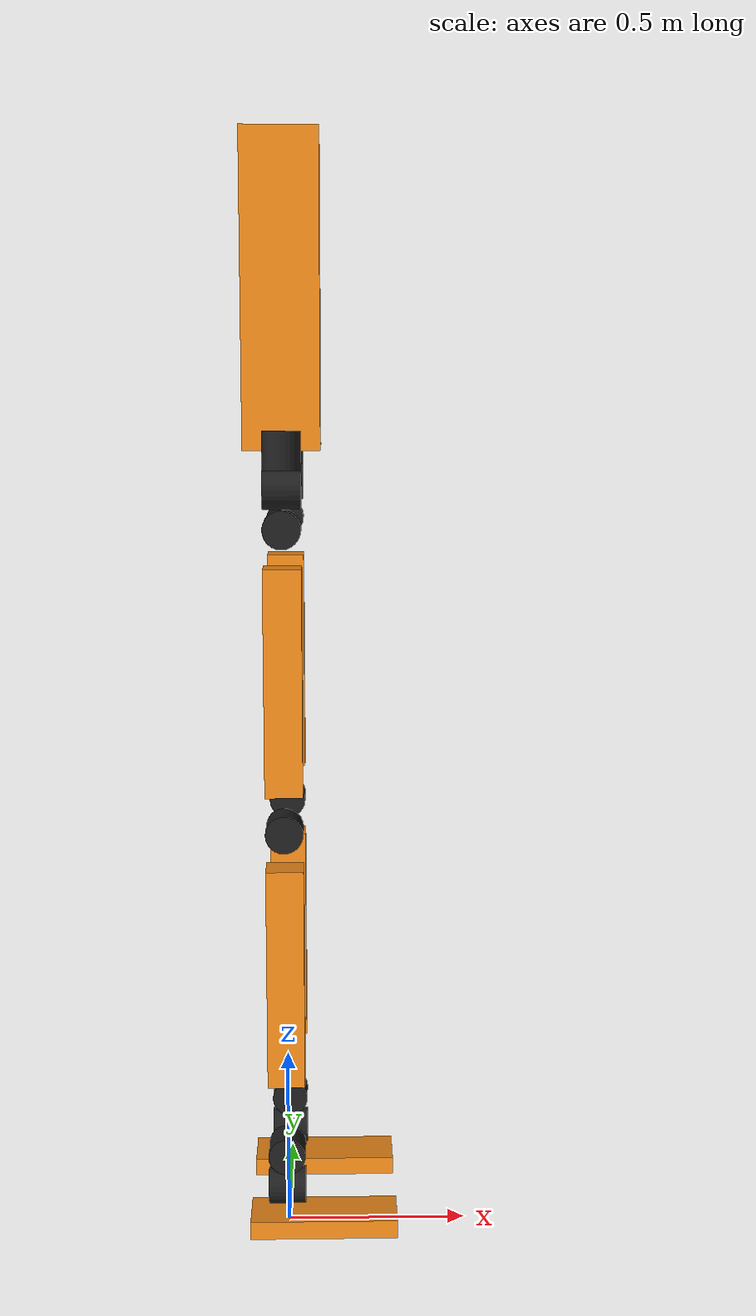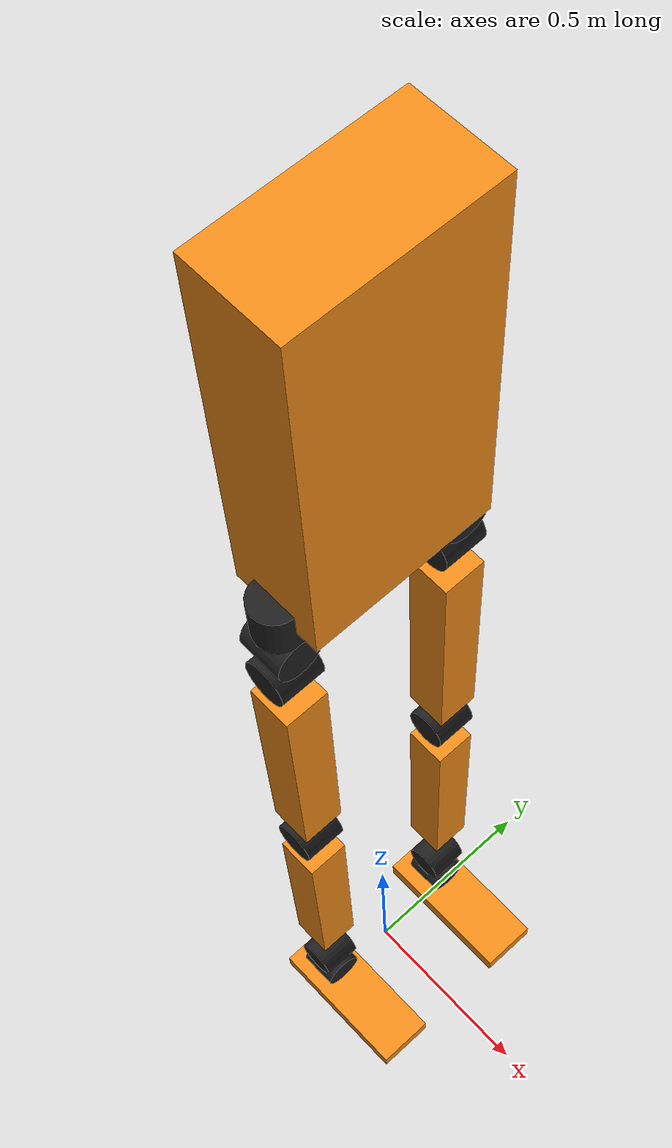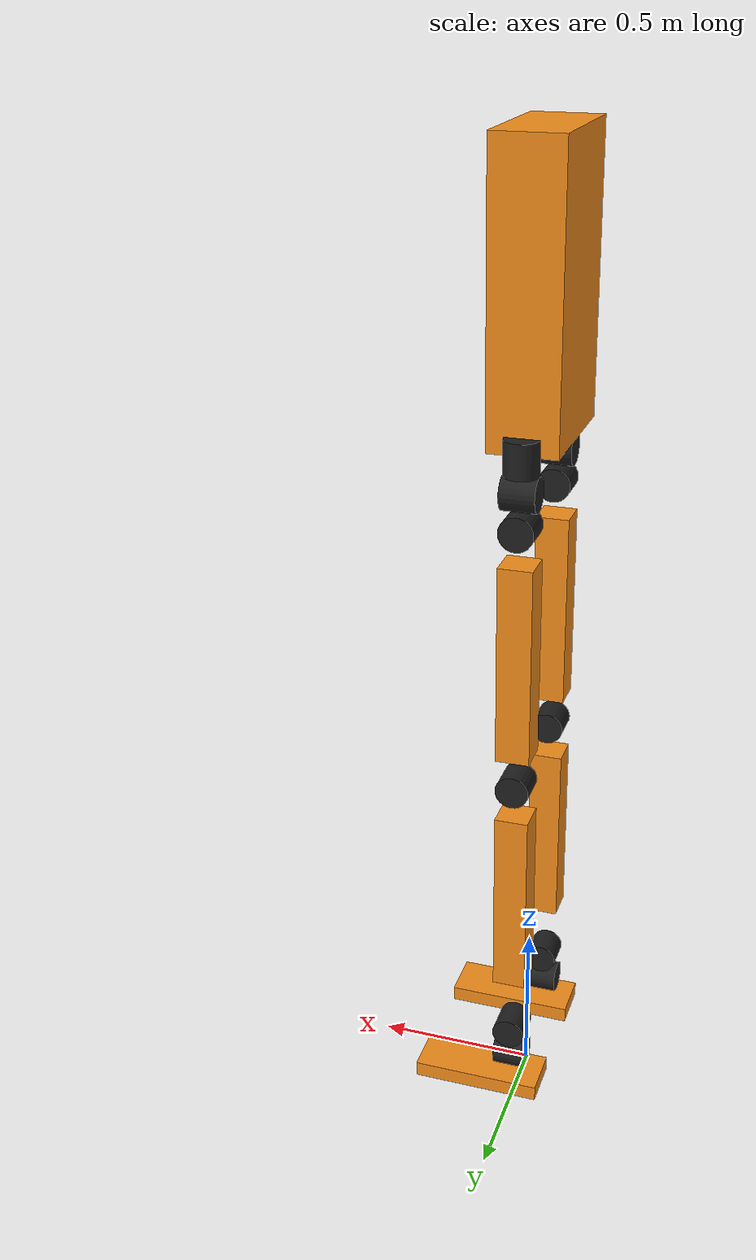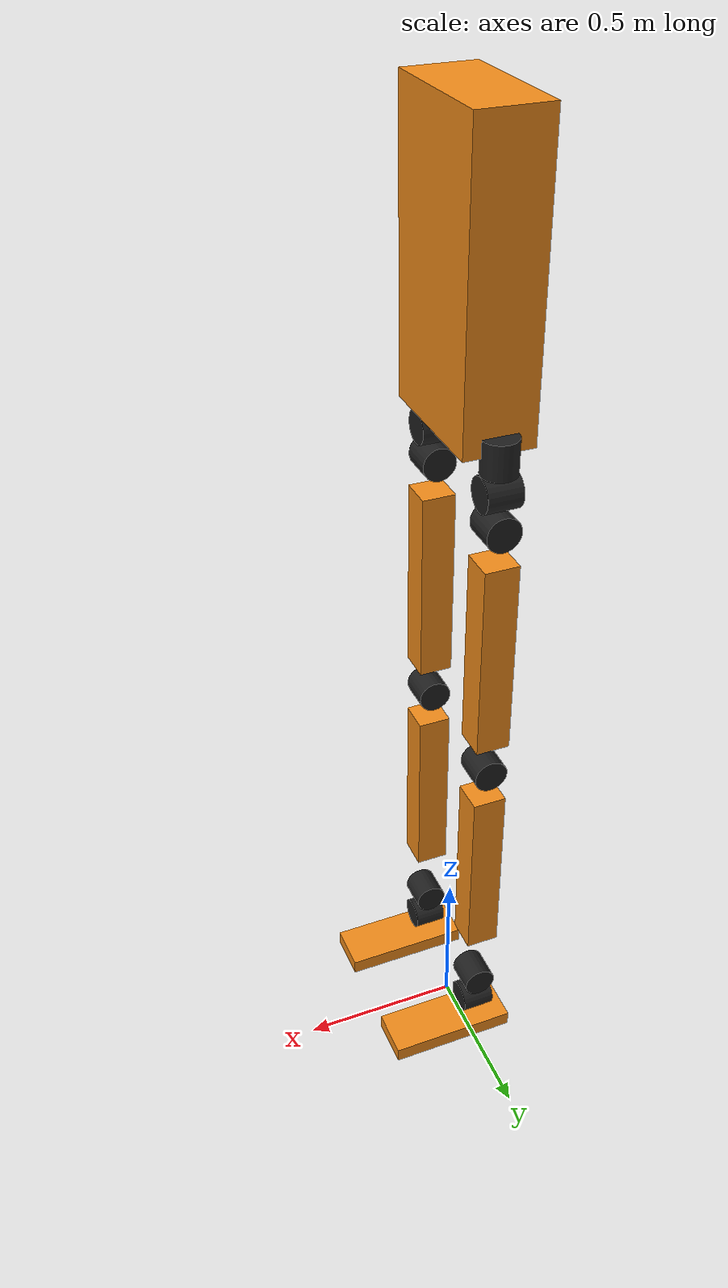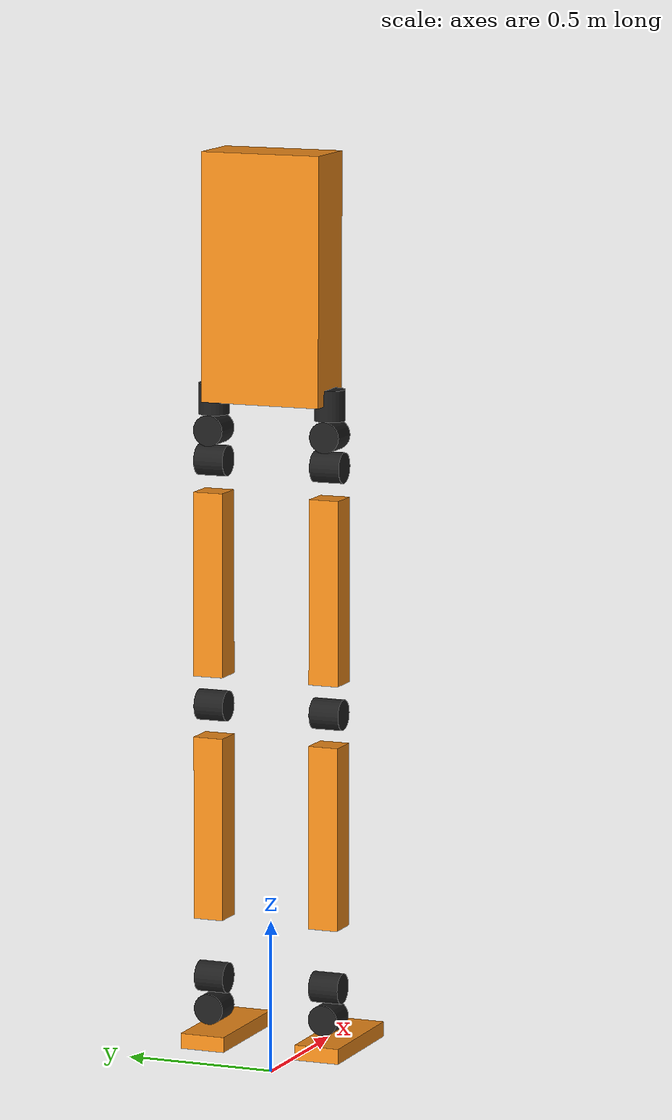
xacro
<?xml version='1.0'?>

<robot name="humanoid" xmlns:xacro="http://www.ros.org/wiki/xacro">

  <xacro:include filename="$(find humanoid_description)/urdf/humanoid.gazebo" />
  <xacro:include filename="$(find humanoid_description)/urdf/materials.xacro" />
  <xacro:include filename="$(find humanoid_description)/urdf/macros.xacro"    />
<!--lllllllllllllllllllllllllllllllllllllllllllllllllllllllllllll           sensors         lllllllllllllllllllllllllllllllllllllllll/-->

  <!--lllllllllllllllllllllllllllllllllllllllllllllllllllllllllllll     sensors fixed joints    lllllllllllllllllllllllllllllllllllllllll/-->

<!--lllllllllllllllllllllllllllllllllllllllllllllllllllllllllllll     waist_world fixed joint     lllllllllllllllllllllllllllllllllllllllll/-->

<!--lllllllllllllllllllllllllllllllllllllllllllllllllllllllllllll           waist         lllllllllllllllllllllllllllllllllllllllll/-->

 <link name='waist'>
    <inertial>
      <mass value="10.0"/>
      <origin xyz="0.0 0.0 2.6" rpy=" 0 0 0"/>
      <inertia
          ixx="0.5" ixy="0" ixz="0"
          iyy="1.0" iyz="0"
          izz="0.1"
      />
    </inertial>
    <collision name='collision'>
      <origin xyz="0.0 0.0 2.6" rpy=" 0 0 0"/>
      <geometry>
        <box size=".2 .5 .8"/>
      </geometry>
    </collision>
    <visual name='waist_visual'>
      <origin xyz="0.0 0.0 2.6" rpy=" 0 0 0"/>
      <geometry>
        <box size=".2 .4 .8"/>
      </geometry>
    </visual>
  </link>

  <!--lllllllllllllllllllllllllllllllllllllllllllllllllllllllllllll   hip yaw joints       lllllllllllllllllllllllllllllllllllllllll/-->

  <joint name="hiplyaw_joint" type="revolute">
    <axis xyz="0 0 1"/>
    <limit effort="1000.0" lower="-1.5707" upper="1.5707" velocity="0.0"/>
    <origin rpy="0 0 0" xyz="0 -0.2 2.2"/>
    <parent link="waist"/>
    <child link="hipl1"/>
  </joint>

  <joint name="hipryaw_joint" type="revolute">
    <axis xyz="0 0 1"/>
    <limit effort="1000.0" lower="-1.5707" upper="1.5707" velocity="0.0"/>
    <origin rpy="0 0 0" xyz="0 0.2 2.2"/>
    <parent link="waist"/>
    <child link="hipr1"/>
  </joint>

<!--lllllllllllllllllllllllllllllllllllllllllllllllllllllllllllll           hip  1         lllllllllllllllllllllllllllllllllllllllll/-->

  <link name="hipl1">
    <!--origin xyz="0.1 -0.13 0.1" rpy="0 1.5707 1.5707"/-->
    <collision name="collision">
      <origin xyz="0 -0.0 0" rpy="0 0 0"/>
      <geometry>
        <cylinder radius="0.05" length="0.1"/>
      </geometry>
    </collision>
    <visual name="hipl1_visual">
      <origin xyz="0 -0.0 0" rpy="0 0 0"/>
      <geometry>
        <cylinder radius="0.05" length="0.1"/>
      </geometry>
    </visual>
    <inertial>
      <origin xyz="0 -0.0 0" rpy="0 0 0"/>
      <mass value="1"/>
      <cylinder_inertia m="1" r="0.05" h="0.1"/>
      <inertia
        ixx="1.0" ixy="0.0" ixz="0.0"
        iyy="1.0" iyz="0.0"
        izz="1.0"/>
    </inertial>
  </link>

  <link name="hipr1">
    <!--origin xyz="0.1 -0.13 0.1" rpy="0 1.5707 1.5707"/-->
    <collision name="collision">
      <origin xyz="0 0.0 0" rpy="0 0 0"/>
      <geometry>
        <cylinder radius="0.05" length="0.1"/>
      </geometry>
    </collision>
    <visual name="hipr1_visual">
      <origin xyz="0 0.0 0" rpy="0 0 0"/>
      <geometry>
        <cylinder radius="0.05" length="0.1"/>
      </geometry>
    </visual>
    <inertial>
      <origin xyz="0 0.0 0" rpy="0 0 0"/>
      <mass value="1"/>
      <cylinder_inertia m="1" r="0.05" h="0.1"/>
      <inertia
        ixx="1.0" ixy="0.0" ixz="0.0"
        iyy="1.0" iyz="0.0"
        izz="1.0"/>
    </inertial>
  </link>

  <!--lllllllllllllllllllllllllllllllllllllllllllllllllllllllllllll     hip roll joints          lllllllllllllllllllllllllllllllllllllllll/-->

  <joint name="hiplroll_joint" type="revolute">
    <axis xyz="1 0 0"/>
    <limit effort="1000.0" lower="-1.5707" upper="1.5707" velocity="0.0"/>
    <origin rpy="0 0 0" xyz="0 0.0 -0.1"/>
    <parent link="hipl1"/>
    <child link="hipl2"/>
  </joint>

  <transmission name="tran_hipl_roll">
    <type>transmission_interface/SimpleTransmission</type>
    <joint name="hiplroll_joint">
      <hardwareInterface>EffortJointInterface</hardwareInterface>
    </joint>
    <actuator name="motor_hipl_roll">
      <hardwareInterface>EffortJointInterface</hardwareInterface>
      <mechanicalReduction>1</mechanicalReduction>
    </actuator>
  </transmission>

  <joint name="hiprroll_joint" type="revolute">
    <axis xyz="1 0 0"/>
    <limit effort="1000.0" lower="-1.5707" upper="1.5707" velocity="0.0"/>
    <origin rpy="0 0 0" xyz="0 0.0 -0.1"/>
    <parent link="hipr1"/>
    <child link="hipr2"/>
  </joint>

  <transmission name="tran_hipr_roll">
    <type>transmission_interface/SimpleTransmission</type>
    <joint name="hiprroll_joint">
      <hardwareInterface>EffortJointInterface</hardwareInterface>
    </joint>
    <actuator name="motor_hipr_roll">
      <hardwareInterface>EffortJointInterface</hardwareInterface>
      <mechanicalReduction>1</mechanicalReduction>
    </actuator>
  </transmission>
<!--lllllllllllllllllllllllllllllllllllllllllllllllllllllllllllll        hip 2         lllllllllllllllllllllllllllllllllllllllll/-->

  <link name="hipl2">
    <!--origin xyz="0.1 -0.13 0.1" rpy="0 1.5707 1.5707"/-->
    <collision name="collision">
      <origin xyz="0 -0.0 0" rpy="0 1.5707 0"/>
      <geometry>
        <cylinder radius="0.05" length="0.1"/>
      </geometry>
    </collision>
    <visual name="hipl2_visual">
      <origin xyz="0 -0.0 0" rpy="0 1.5707 0"/>
      <geometry>
        <cylinder radius="0.05" length="0.1"/>
      </geometry>
    </visual>
    <inertial>
      <origin xyz="0 -0.0 0" rpy="0 1.5707 0"/>
      <mass value="1"/>
      <cylinder_inertia m="1" r="0.05" h="0.1"/>
      <inertia
        ixx="1.0" ixy="0.0" ixz="0.0"
        iyy="1.0" iyz="0.0"
        izz="1.0"/>
    </inertial>
  </link>

  <link name="hipr2">
    <!--origin xyz="0.1 -0.13 0.1" rpy="0 1.5707 1.5707"/-->
    <collision name="collision">
      <origin xyz="0 0.0 0" rpy="0 1.5707 0"/>
      <geometry>
        <cylinder radius="0.05" length="0.1"/>
      </geometry>
    </collision>
    <visual name="hipr2_visual">
      <origin xyz="0 0.0 0" rpy="0 1.5707 0"/>
      <geometry>
        <cylinder radius="0.05" length="0.1"/>
      </geometry>
    </visual>
    <inertial>
      <origin xyz="0 0.0 0" rpy="0 1.5707 0"/>
      <mass value="1"/>
      <cylinder_inertia m="1" r="0.05" h="0.1"/>
      <inertia
        ixx="1.0" ixy="0.0" ixz="0.0"
        iyy="1.0" iyz="0.0"
        izz="1.0"/>
    </inertial>
  </link>

  <!--lllllllllllllllllllllllllllllllllllllllllllllllllllllllllllll    hip pitch  joints          lllllllllllllllllllllllllllllllllllllllll/-->

  <joint name="hiplpitch_joint" type="revolute">
    <axis xyz="0 1 0"/>
    <limit effort="1000.0" lower="-1.5707" upper="1.5707" velocity="0.0"/>
    <origin rpy="0 0 0" xyz="0 0.0 -0.1"/>
    <parent link="hipl2"/>
    <child link="hipl3"/>
  </joint>

  <transmission name="tran_hipl_pitch">
    <type>transmission_interface/SimpleTransmission</type>
    <joint name="hiplpitch_joint">
      <hardwareInterface>EffortJointInterface</hardwareInterface>
    </joint>
    <actuator name="motor_hipl_pitch">
      <hardwareInterface>EffortJointInterface</hardwareInterface>
      <mechanicalReduction>1</mechanicalReduction>
    </actuator>
  </transmission>

  <joint name="hiprpitch_joint" type="revolute">
    <axis xyz="0 1 0"/>
    <limit effort="1000.0" lower="-1.5707" upper="1.5707" velocity="0.0"/>
    <origin rpy="0 0 0" xyz="0 0.0 -0.1"/>
    <parent link="hipr2"/>
    <child link="hipr3"/>
  </joint>

  <transmission name="tran_hirl_pitch">
    <type>transmission_interface/SimpleTransmission</type>
    <joint name="hiprpitch_joint">
      <hardwareInterface>EffortJointInterface</hardwareInterface>
    </joint>
    <actuator name="motor_hipr_pitch">
      <hardwareInterface>EffortJointInterface</hardwareInterface>
      <mechanicalReduction>1</mechanicalReduction>
    </actuator>
  </transmission>

<!--lllllllllllllllllllllllllllllllllllllllllllllllllllllllllllll           hip 3         lllllllllllllllllllllllllllllllllllllllll/-->

  <link name="hipl3">
    <!--origin xyz="0.1 -0.13 0.1" rpy="0 1.5707 1.5707"/-->
    <collision name="collision">
      <origin xyz="0 -0.0 0" rpy="1.5707 0 0"/>
      <geometry>
        <cylinder radius="0.05" length="0.1"/>
      </geometry>
    </collision>
    <visual name="hipl3_visual">
      <origin xyz="0 -0.0 0" rpy="1.5707 0 0"/>
      <geometry>
        <cylinder radius="0.05" length="0.1"/>
      </geometry>
    </visual>
    <inertial>
      <origin xyz="0 -0.0 0" rpy="1.5707 0 0"/>
      <mass value="1"/>
      <cylinder_inertia m="1" r="0.05" h="0.1"/>
      <inertia
        ixx="1.0" ixy="0.0" ixz="0.0"
        iyy="1.0" iyz="0.0"
        izz="1.0"/>
    </inertial>
  </link>

  <link name="hipr3">
    <!--origin xyz="0.1 -0.13 0.1" rpy="0 1.5707 1.5707"/-->
    <collision name="collision">
      <origin xyz="0 0.0 0" rpy="1.5707 0 0"/>
      <geometry>
        <cylinder radius="0.05" length="0.1"/>
      </geometry>
    </collision>
    <visual name="hipr3_visual">
      <origin xyz="0 0.0 0" rpy="1.5707 0 0"/>
      <geometry>
        <cylinder radius="0.05" length="0.1"/>
      </geometry>
    </visual>
    <inertial>
      <origin xyz="0 0.0 0" rpy="1.5707 0 0"/>
      <mass value="1"/>
      <cylinder_inertia m="1" r="0.05" h="0.1"/>
      <inertia
        ixx="1.0" ixy="0.0" ixz="0.0"
        iyy="1.0" iyz="0.0"
        izz="1.0"/>
    </inertial>
  </link>

  <!--lllllllllllllllllllllllllllllllllllllllllllllllllllllllllllll      thigh fixed  joints          lllllllllllllllllllllllllllllllllllllllll/-->

  <joint name="thighl_joint" type="fixed">
    <origin rpy="0 0 0" xyz="0 0.0 -0.1"/>
    <parent link="hipl3"/>
    <child link="thighl"/>
  </joint>

  <joint name="thighr_joint" type="fixed">
    <origin rpy="0 0 0" xyz="0 0.0 -0.1"/>
    <parent link="hipr3"/>
    <child link="thighr"/>
  </joint>

<!--lllllllllllllllllllllllllllllllllllllllllllllllllllllllllllll           thigh         lllllllllllllllllllllllllllllllllllllllll/-->

  <link name='thighl'>
    <inertial>
      <mass value="10.0"/>
      <origin xyz="0.0 0.0 -0.3" rpy=" 0 0 0"/>
      <inertia
          ixx="0.5" ixy="0" ixz="0"
          iyy="1.0" iyz="0"
          izz="0.1"
      />
    </inertial>
    <collision name='collision'>
      <origin xyz="0.0 0.0 -0.3" rpy=" 0 0 0"/>
      <geometry>
        <box size=".1 .1 0.6"/>
      </geometry>
    </collision>
    <visual name='thighl_visual'>
      <origin xyz="0.0 0.0 -0.3" rpy=" 0 0 0"/>
      <geometry>
        <box size=".1 .1 0.6"/>
      </geometry>
    </visual>
  </link>

  <link name='thighr'>
    <inertial>
      <mass value="10.0"/>
      <origin xyz="0.0 0.0 -0.3" rpy=" 0 0 0"/>
      <inertia
          ixx="0.5" ixy="0" ixz="0"
          iyy="1.0" iyz="0"
          izz="0.1"
      />
    </inertial>
    <collision name='collision'>
      <origin xyz="0.0 0.0 -0.3" rpy=" 0 0 0"/>
      <geometry>
        <box size=".1 .1 0.6"/>
      </geometry>
    </collision>
    <visual name='thighr_visual'>
      <origin xyz="0.0 0.0 -0.3" rpy=" 0 0 0"/>
      <geometry>
        <box size=".1 .1 0.6"/>
      </geometry>
    </visual>
  </link>

  <!--lllllllllllllllllllllllllllllllllllllllllllllllllllllllllllll      knee  joints          lllllllllllllllllllllllllllllllllllllllll/-->

  <joint name="kneelpitch_joint" type="revolute">
    <axis xyz="0 -1 0"/>
    <limit effort="1000.0" lower="-3" upper="0" velocity="0.0"/>
    <origin rpy="0 0 0" xyz="0 0.0 -0.7"/>
    <parent link="thighl"/>
    <child link="kneel"/>
  </joint>

  <transmission name="tran_kneel_pitch">
    <type>transmission_interface/SimpleTransmission</type>
    <joint name="kneelpitch_joint">
      <hardwareInterface>EffortJointInterface</hardwareInterface>
    </joint>
    <actuator name="motor_kneel_pitch">
      <hardwareInterface>EffortJointInterface</hardwareInterface>
      <mechanicalReduction>1</mechanicalReduction>
    </actuator>
  </transmission>

  <joint name="kneerpitch_joint" type="revolute">
    <axis xyz="0 -1 0"/>
    <limit effort="1000.0" lower="-3" upper="0" velocity="0.0"/>
    <origin rpy="0 0 0" xyz="0 0.0 -0.7"/>
    <parent link="thighr"/>
    <child link="kneer"/>
  </joint>

  <transmission name="tran_kneer_pitch">
    <type>transmission_interface/SimpleTransmission</type>
    <joint name="kneerpitch_joint">
      <hardwareInterface>EffortJointInterface</hardwareInterface>
    </joint>
    <actuator name="motor_kneer_pitch">
      <hardwareInterface>EffortJointInterface</hardwareInterface>
      <mechanicalReduction>1</mechanicalReduction>
    </actuator>
  </transmission>

<!--lllllllllllllllllllllllllllllllllllllllllllllllllllllllllllll           knee         lllllllllllllllllllllllllllllllllllllllll/-->

  <link name="kneel">
    <!--origin xyz="0.1 -0.13 0.1" rpy="0 1.5707 1.5707"/-->
    <collision name="collision">
      <origin xyz="0 -0.0 0" rpy="1.5707 0 0"/>
      <geometry>
        <cylinder radius="0.05" length="0.1"/>
      </geometry>
    </collision>
    <visual name="kneel_visual">
      <origin xyz="0 -0.0 0" rpy="1.5707 0 0"/>
      <geometry>
        <cylinder radius="0.05" length="0.1"/>
      </geometry>
    </visual>
    <inertial>
      <origin xyz="0 -0.0 0" rpy="1.5707 0 0"/>
      <mass value="1"/>
      <cylinder_inertia m="1" r="0.05" h="0.1"/>
      <inertia
        ixx="1.0" ixy="0.0" ixz="0.0"
        iyy="1.0" iyz="0.0"
        izz="1.0"/>
    </inertial>
  </link>

  <link name="kneer">
    <!--origin xyz="0.1 -0.13 0.1" rpy="0 1.5707 1.5707"/-->
    <collision name="collision">
      <origin xyz="0 0.0 0" rpy="1.5707 0 0"/>
      <geometry>
        <cylinder radius="0.05" length="0.1"/>
      </geometry>
    </collision>
    <visual name="kneer_visual">
      <origin xyz="0 0.0 0" rpy="1.5707 0 0"/>
      <geometry>
        <cylinder radius="0.05" length="0.1"/>
      </geometry>
    </visual>
    <inertial>
      <origin xyz="0 0.0 0" rpy="1.5707 0 0"/>
      <mass value="1"/>
      <cylinder_inertia m="1" r="0.05" h="0.1"/>
      <inertia
        ixx="1.0" ixy="0.0" ixz="0.0"
        iyy="1.0" iyz="0.0"
        izz="1.0"/>
    </inertial>
  </link>

  <!--lllllllllllllllllllllllllllllllllllllllllllllllllllllllllllll       shank fixed joints          lllllllllllllllllllllllllllllllllllllllll/-->

  <joint name="shankl_joint" type="fixed">
    <origin rpy="0 0 0" xyz="0 0.0 -0.1"/>
    <parent link="kneel"/>
    <child link="shankl"/>
  </joint>

  <joint name="shankr_joint" type="fixed">
    <origin rpy="0 0 0" xyz="0 0.0 -0.1"/>
    <parent link="kneer"/>
    <child link="shankr"/>
  </joint>

<!--lllllllllllllllllllllllllllllllllllllllllllllllllllllllllllll           shank        lllllllllllllllllllllllllllllllllllllllll/-->

  <link name='shankl'>
    <inertial>
      <mass value="10.0"/>
      <origin xyz="0.0 0.0 -0.3" rpy=" 0 0 0"/>
      <inertia
          ixx="0.5" ixy="0" ixz="0"
          iyy="1.0" iyz="0"
          izz="0.1"
      />
    </inertial>
    <collision name='collision'>
      <origin xyz="0.0 0.0 -0.3" rpy=" 0 0 0"/>
      <geometry>
        <box size=".1 .1 0.6"/>
      </geometry>
    </collision>
    <visual name='shankl_visual'>
      <origin xyz="0.0 0.0 -0.3" rpy=" 0 0 0"/>
      <geometry>
        <box size=".1 .1 0.6"/>
      </geometry>
    </visual>
  </link>

  <link name='shankr'>
    <inertial>
      <mass value="10.0"/>
      <origin xyz="0.0 0.0 -0.3" rpy=" 0 0 0"/>
      <inertia
          ixx="0.5" ixy="0" ixz="0"
          iyy="1.0" iyz="0"
          izz="0.1"
      />
    </inertial>
    <collision name='collision'>
      <origin xyz="0.0 0.0 -0.3" rpy=" 0 0 0"/>
      <geometry>
        <box size=".1 .1 0.6"/>
      </geometry>
    </collision>
    <visual name='shankr_visual'>
      <origin xyz="0.0 0.0 -0.3" rpy=" 0 0 0"/>
      <geometry>
        <box size=".1 .1 0.6"/>
      </geometry>
    </visual>
  </link>

  <!--lllllllllllllllllllllllllllllllllllllllllllllllllllllllllllll      ankle1  joints          lllllllllllllllllllllllllllllllllllllllll/-->

  <joint name="anklelpitch_joint" type="revolute">
    <axis xyz="0 1 0"/>
    <limit effort="1000.0" lower="-1.5707" upper="1.5707" velocity="0.0"/>
    <origin rpy="0 0 0" xyz="0 0.0 -0.8"/>
    <parent link="shankl"/>
    <child link="anklel1"/>
  </joint>

  <transmission name="tran_anklel_pitch">
    <type>transmission_interface/SimpleTransmission</type>
    <joint name="anklelpitch_joint">
      <hardwareInterface>EffortJointInterface</hardwareInterface>
    </joint>
    <actuator name="motor_anklel_pitch">
      <hardwareInterface>EffortJointInterface</hardwareInterface>
      <mechanicalReduction>1</mechanicalReduction>
    </actuator>
  </transmission>

  <joint name="anklerpitch_joint" type="revolute">
    <axis xyz="0 1 0"/>
    <limit effort="1000.0" lower="-1.5707" upper="1.5707" velocity="0.0"/>
    <origin rpy="0 0 0" xyz="0 0.0 -0.8"/>
    <parent link="shankr"/>
    <child link="ankler1"/>
  </joint>

  <transmission name="tran_ankler_pitch">
    <type>transmission_interface/SimpleTransmission</type>
    <joint name="anklerpitch_joint">
      <hardwareInterface>EffortJointInterface</hardwareInterface>
    </joint>
    <actuator name="motor_ankler_pitch">
      <hardwareInterface>EffortJointInterface</hardwareInterface>
      <mechanicalReduction>1</mechanicalReduction>
    </actuator>
  </transmission>

<!--lllllllllllllllllllllllllllllllllllllllllllllllllllllllllllll           ankle 1         lllllllllllllllllllllllllllllllllllllllll/-->

  <link name="anklel1">

    <collision name="collision">
      <origin xyz="0 -0.0 0" rpy="1.5707 0 0"/>
      <geometry>
        <cylinder radius="0.05" length="0.1"/>
      </geometry>
    </collision>
    <visual name="anklel1_visual">
      <origin xyz="0 -0.0 0" rpy="1.5707 0 0"/>
      <geometry>
        <cylinder radius="0.05" length="0.1"/>
      </geometry>
    </visual>
    <inertial>
      <origin xyz="0 -0.0 0" rpy="1.5707 0 0"/>
      <mass value="1"/>
      <cylinder_inertia m="1" r="0.05" h="0.1"/>
      <inertia
        ixx="1.0" ixy="0.0" ixz="0.0"
        iyy="1.0" iyz="0.0"
        izz="1.0"/>
    </inertial>
  </link>

  <link name="ankler1">

    <collision name="collision">
      <origin xyz="0 0.0 0" rpy="1.5707 0 0"/>
      <geometry>
        <cylinder radius="0.05" length="0.1"/>
      </geometry>
    </collision>
    <visual name="ankler1_visual">
      <origin xyz="0 0.0 0" rpy="1.5707 0 0"/>
      <geometry>
        <cylinder radius="0.05" length="0.1"/>
      </geometry>
    </visual>
    <inertial>
      <origin xyz="0 0.0 0" rpy="1.5707 0 0"/>
      <mass value="1"/>
      <cylinder_inertia m="1" r="0.05" h="0.1"/>
      <inertia
        ixx="1.0" ixy="0.0" ixz="0.0"
        iyy="1.0" iyz="0.0"
        izz="1.0"/>
    </inertial>
  </link>

  <!--lllllllllllllllllllllllllllllllllllllllllllllllllllllllllllll      ankle2  joints          lllllllllllllllllllllllllllllllllllllllll/-->

  <joint name="anklelroll_joint" type="revolute">
    <axis xyz="1 0 0"/>
    <limit effort="1000.0" lower="-1.5707" upper="1.5707" velocity="0.0"/>
    <origin rpy="0 0 0" xyz="0 0.0 -0.1"/>
    <parent link="anklel1"/>
    <child link="anklel2"/>
  </joint>

  <transmission name="tran_anklel_roll">
    <type>transmission_interface/SimpleTransmission</type>
    <joint name="anklelroll_joint">
      <hardwareInterface>EffortJointInterface</hardwareInterface>
    </joint>
    <actuator name="motor_anklel_roll">
      <hardwareInterface>EffortJointInterface</hardwareInterface>
      <mechanicalReduction>1</mechanicalReduction>
    </actuator>
  </transmission>

  <joint name="anklerroll_joint" type="revolute">
    <axis xyz="1 0 0"/>
    <limit effort="1000.0" lower="-1.5707" upper="1.5707" velocity="0.0"/>
    <origin rpy="0 0 0" xyz="0 0.0 -0.1"/>
    <parent link="ankler1"/>
    <child link="ankler2"/>
  </joint>

  <transmission name="tran_ankler_roll">
    <type>transmission_interface/SimpleTransmission</type>
    <joint name="anklerroll_joint">
      <hardwareInterface>EffortJointInterface</hardwareInterface>
    </joint>
    <actuator name="motor_ankler_roll">
      <hardwareInterface>EffortJointInterface</hardwareInterface>
      <mechanicalReduction>1</mechanicalReduction>
    </actuator>
  </transmission>

<!--lllllllllllllllllllllllllllllllllllllllllllllllllllllllllllll           ankle 2         lllllllllllllllllllllllllllllllllllllllll/-->

  <link name="anklel2">

    <collision name="collision">
      <origin xyz="0 -0.0 0" rpy="0 1.5707 0"/>
      <geometry>
        <cylinder radius="0.05" length="0.1"/>
      </geometry>
    </collision>
    <visual name="anklel2_visual">
      <origin xyz="0 -0.0 0" rpy="0 1.5707 0"/>
      <geometry>
        <cylinder radius="0.05" length="0.1"/>
      </geometry>
    </visual>
    <inertial>
      <origin xyz="0 -0.0 0" rpy="0 1.5707 0"/>
      <mass value="1"/>
      <cylinder_inertia m="1" r="0.05" h="0.1"/>
      <inertia
        ixx="1.0" ixy="0.0" ixz="0.0"
        iyy="1.0" iyz="0.0"
        izz="1.0"/>
    </inertial>
  </link>

  <link name="ankler2">

    <collision name="collision">
      <origin xyz="0 0.0 0" rpy="0 1.5707 0"/>
      <geometry>
        <cylinder radius="0.05" length="0.1"/>
      </geometry>
    </collision>
    <visual name="ankler2_visual">
      <origin xyz="0 0.0 0" rpy="0 1.5707 0"/>
      <geometry>
        <cylinder radius="0.05" length="0.1"/>
      </geometry>
    </visual>
    <inertial>
      <origin xyz="0 0.0 0" rpy="0 1.5707 0"/>
      <mass value="1"/>
      <cylinder_inertia m="1" r="0.05" h="0.1"/>
      <inertia
        ixx="1.0" ixy="0.0" ixz="0.0"
        iyy="1.0" iyz="0.0"
        izz="1.0"/>
    </inertial>
  </link>

  <!--lllllllllllllllllllllllllllllllllllllllllllllllllllllllllllll      feet  fixed joints          lllllllllllllllllllllllllllllllllllllllll/-->

  <joint name="footl_joint" type="fixed">
    <origin rpy="0 0 0" xyz="0 0.0 -0.1"/>
    <parent link="anklel2"/>
    <child link="footl"/>
  </joint>

  <joint name="footr_joint" type="fixed">
    <origin rpy="0 0 0" xyz="0 0.0 -0.1"/>
    <parent link="ankler2"/>
    <child link="footr"/>
  </joint>

<!--lllllllllllllllllllllllllllllllllllllllllllllllllllllllllllll           feet         lllllllllllllllllllllllllllllllllllllllll/-->

 <link name='footl'>
    <inertial>
      <mass value="10.0"/>
      <origin xyz="0.0 0.0 0.0" rpy=" 0 0 0"/>
      <inertia
          ixx="0.5" ixy="0" ixz="0"
          iyy="1.0" iyz="0"
          izz="0.1"
      />
    </inertial>
    <collision name='collision'>
      <origin xyz="0.1 0.0 0.0" rpy=" 0 0 0"/>
      <geometry>
        <box size=".4 .15 .05"/>
      </geometry>
    </collision>
    <visual name='footl_visual'>
      <origin xyz="0.1 0.0 0.0" rpy=" 0 0 0"/>
      <geometry>
        <box size=".4 .15 .05"/>
      </geometry>
    </visual>
  </link>

 <link name='footr'>
    <inertial>
      <mass value="10.0"/>
      <origin xyz="0.1 0.0 0.0" rpy=" 0 0 0"/>
      <inertia
          ixx="0.5" ixy="0" ixz="0"
          iyy="1.0" iyz="0"
          izz="0.1"
      />
    </inertial>
    <collision name='collision'>
      <origin xyz="0.1 0.0 0.0" rpy=" 0 0 0"/>
      <geometry>
        <box size=".4 .15 .05"/>
      </geometry>
    </collision>
    <visual name='footr_visual'>
      <origin xyz="0.1 0.0 0.0" rpy=" 0 0 0"/>
      <geometry>
        <box size=".4 .15 .05"/>
      </geometry>
    </visual>
  </link>

</robot>
